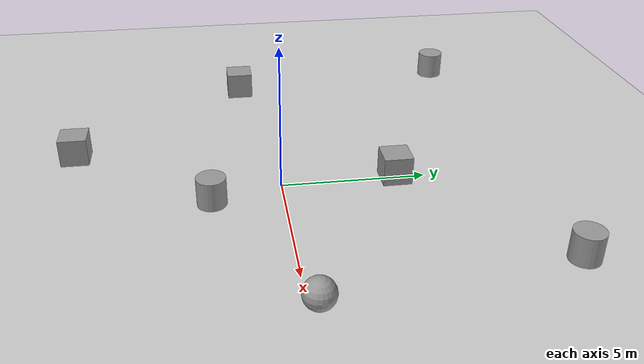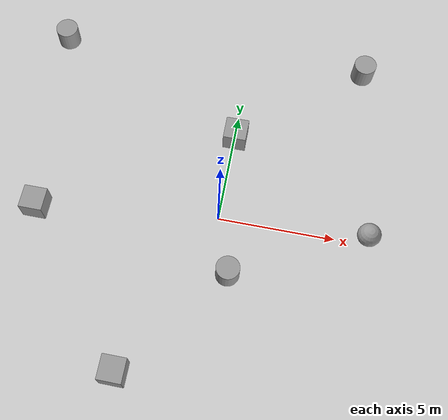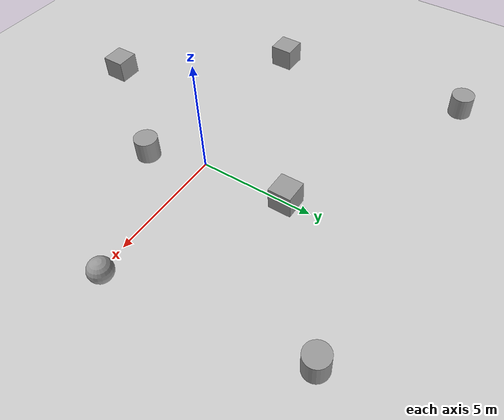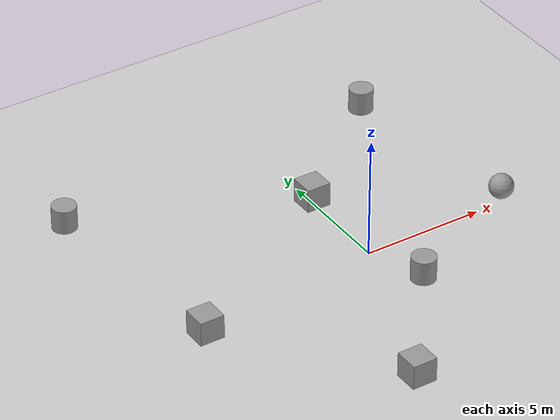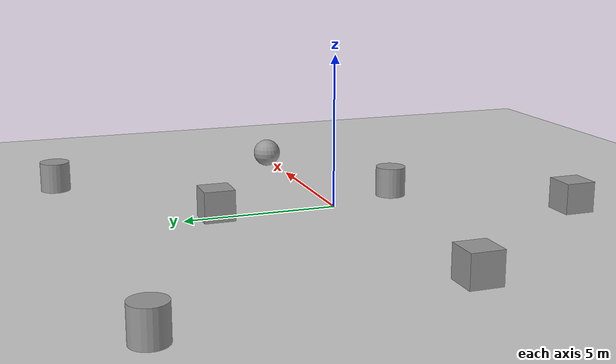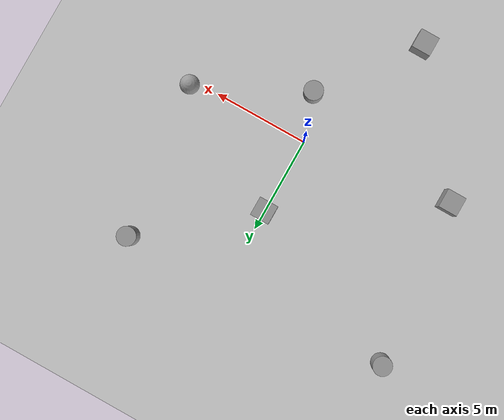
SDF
<sdf version="1.6">
 <world name="default">
  <light name="sun" type="directional">
   <pose>0 0 10 0 -0 0</pose>
   <diffuse>0.8 0.8 0.8 1</diffuse>
   <specular>0.2 0.2 0.2 1</specular>
   <attenuation>
    <range>1000</range>
    <constant>0.9</constant>
    <linear>0.01</linear>
    <quadratic>0.001</quadratic>
   </attenuation>
   <direction>-0.5 0.1 -0.9</direction>
  </light>
  <model name="ground_plane">
   <static>1</static>
   <link name="link">
    <collision name="collision">
     <geometry><plane><normal>0 0 1</normal><size>100 100</size></plane></geometry>
     <surface><friction><ode><mu>100</mu><mu2>50</mu2></ode></friction></surface>
    </collision>
    <visual name="visual">
     <cast_shadows>0</cast_shadows>
     <geometry><plane><normal>0 0 1</normal><size>100 100</size></plane></geometry>
     <material>
      <script><uri>file://media/materials/scripts/gazebo.material</uri><name>Gazebo/Grey</name></script>
     </material>
    </visual>
   </link>
  </model>
  <gravity>0 0 -9.8</gravity>
  <magnetic_field>6e-06 2.3e-05 -4.2e-05</magnetic_field>
  <atmosphere type="adiabatic"/>
  <physics name="default_physics" default="0" type="ode">
   <max_step_size>0.001</max_step_size>
   <real_time_factor>1</real_time_factor>
   <real_time_update_rate>1000</real_time_update_rate>
  </physics>
  <scene><ambient>0.4 0.4 0.4 1</ambient><background>0.7 0.7 0.7 1</background><shadows>1</shadows></scene>
  <spherical_coordinates>
   <surface_model>EARTH_WGS84</surface_model>
   <latitude_deg>0</latitude_deg>
   <longitude_deg>0</longitude_deg>
   <elevation>0</elevation>
   <heading_deg>0</heading_deg>
  </spherical_coordinates>
  <model name="world1.world">
   <link name="link_0">
    <pose>1.01026 2.53596 0 0 -0 0</pose>
    <inertial>
     <mass>1</mass>
     <inertia>
      <ixx>0.166667</ixx>
      <ixy>0</ixy>
      <ixz>0</ixz>
      <iyy>0.166667</iyy>
      <iyz>0</iyz>
      <izz>0.166667</izz>
     </inertia>
    </inertial>
    <visual name="visual">
     <geometry><box><size>1 1 1</size></box></geometry>
     <material>
      <lighting>1</lighting>
      <script><uri>file://media/materials/scripts/gazebo.material</uri><name>Gazebo/Grey</name></script>
      <shader type="pixel"/>
      <ambient>0.3 0.3 0.3 1</ambient>
      <diffuse>0.7 0.7 0.7 1</diffuse>
      <specular>0.01 0.01 0.01 1</specular>
      <emissive>0 0 0 1</emissive>
     </material>
    </visual>
    <collision name="collision">
     <geometry><box><size>1 1 1</size></box></geometry>
     <surface>
      <friction>
       <ode><mu>1</mu><mu2>1</mu2><fdir1>0 0 0</fdir1><slip1>0</slip1><slip2>0</slip2></ode>
       <torsional>
        <coefficient>1</coefficient>
        <patch_radius>0</patch_radius>
        <surface_radius>0</surface_radius>
        <use_patch_radius>1</use_patch_radius>
        <ode><slip>0</slip></ode>
       </torsional>
      </friction>
      <bounce><restitution_coefficient>0</restitution_coefficient><threshold>1e+06</threshold></bounce>
      <contact>
       <collide_without_contact>0</collide_without_contact>
       <collide_without_contact_bitmask>1</collide_without_contact_bitmask>
       <collide_bitmask>1</collide_bitmask>
       <ode>
        <soft_cfm>0</soft_cfm>
        <soft_erp>0.2</soft_erp>
        <kp>1e+13</kp>
        <kd>1</kd>
        <max_vel>0.01</max_vel>
        <min_depth>0</min_depth>
       </ode>
       <bullet>
        <split_impulse>1</split_impulse>
        <split_impulse_penetration_threshold>-0.01</split_impulse_penetration_threshold>
        <soft_cfm>0</soft_cfm>
        <soft_erp>0.2</soft_erp>
        <kp>1e+13</kp>
        <kd>1</kd>
       </bullet>
      </contact>
     </surface>
    </collision>
   </link>
   <link name="link_1">
    <pose>-6.81989 -2.34566 0 0 -0 0</pose>
    <inertial>
     <mass>1</mass>
     <inertia>
      <ixx>0.166667</ixx>
      <ixy>0</ixy>
      <ixz>0</ixz>
      <iyy>0.166667</iyy>
      <iyz>0</iyz>
      <izz>0.166667</izz>
     </inertia>
    </inertial>
    <visual name="visual">
     <geometry><box><size>1 1 1</size></box></geometry>
     <material>
      <lighting>1</lighting>
      <script><uri>file://media/materials/scripts/gazebo.material</uri><name>Gazebo/Grey</name></script>
      <shader type="pixel"/>
      <ambient>0.3 0.3 0.3 1</ambient>
      <diffuse>0.7 0.7 0.7 1</diffuse>
      <specular>0.01 0.01 0.01 1</specular>
      <emissive>0 0 0 1</emissive>
     </material>
    </visual>
    <collision name="collision">
     <geometry><box><size>1 1 1</size></box></geometry>
     <surface>
      <friction>
       <ode><mu>1</mu><mu2>1</mu2><fdir1>0 0 0</fdir1><slip1>0</slip1><slip2>0</slip2></ode>
       <torsional>
        <coefficient>1</coefficient>
        <patch_radius>0</patch_radius>
        <surface_radius>0</surface_radius>
        <use_patch_radius>1</use_patch_radius>
        <ode><slip>0</slip></ode>
       </torsional>
      </friction>
      <bounce><restitution_coefficient>0</restitution_coefficient><threshold>1e+06</threshold></bounce>
      <contact>
       <collide_without_contact>0</collide_without_contact>
       <collide_without_contact_bitmask>1</collide_without_contact_bitmask>
       <collide_bitmask>1</collide_bitmask>
       <ode>
        <soft_cfm>0</soft_cfm>
        <soft_erp>0.2</soft_erp>
        <kp>1e+13</kp>
        <kd>1</kd>
        <max_vel>0.01</max_vel>
        <min_depth>0</min_depth>
       </ode>
       <bullet>
        <split_impulse>1</split_impulse>
        <split_impulse_penetration_threshold>-0.01</split_impulse_penetration_threshold>
        <soft_cfm>0</soft_cfm>
        <soft_erp>0.2</soft_erp>
        <kp>1e+13</kp>
        <kd>1</kd>
       </bullet>
      </contact>
     </surface>
    </collision>
   </link>
   <link name="link_2">
    <pose>-7.76301 6.30091 0 0 -0 0</pose>
    <inertial>
     <mass>1</mass>
     <inertia><ixx>0.145833</ixx><ixy>0</ixy><ixz>0</ixz><iyy>0.145833</iyy><iyz>0</iyz><izz>0.125</izz></inertia>
    </inertial>
    <visual name="visual">
     <geometry><cylinder><radius>0.5</radius><length>1</length></cylinder></geometry>
     <material>
      <lighting>1</lighting>
      <script><uri>file://media/materials/scripts/gazebo.material</uri><name>Gazebo/Grey</name></script>
      <shader type="pixel"/>
      <ambient>0.3 0.3 0.3 1</ambient>
      <diffuse>0.7 0.7 0.7 1</diffuse>
      <specular>0.01 0.01 0.01 1</specular>
      <emissive>0 0 0 1</emissive>
     </material>
    </visual>
    <collision name="collision">
     <geometry><cylinder><radius>0.5</radius><length>1</length></cylinder></geometry>
     <surface>
      <friction>
       <ode><mu>1</mu><mu2>1</mu2><fdir1>0 0 0</fdir1><slip1>0</slip1><slip2>0</slip2></ode>
       <torsional>
        <coefficient>1</coefficient>
        <patch_radius>0</patch_radius>
        <surface_radius>0</surface_radius>
        <use_patch_radius>1</use_patch_radius>
        <ode><slip>0</slip></ode>
       </torsional>
      </friction>
      <bounce><restitution_coefficient>0</restitution_coefficient><threshold>1e+06</threshold></bounce>
      <contact>
       <collide_without_contact>0</collide_without_contact>
       <collide_without_contact_bitmask>1</collide_without_contact_bitmask>
       <collide_bitmask>1</collide_bitmask>
       <ode>
        <soft_cfm>0</soft_cfm>
        <soft_erp>0.2</soft_erp>
        <kp>1e+13</kp>
        <kd>1</kd>
        <max_vel>0.01</max_vel>
        <min_depth>0</min_depth>
       </ode>
       <bullet>
        <split_impulse>1</split_impulse>
        <split_impulse_penetration_threshold>-0.01</split_impulse_penetration_threshold>
        <soft_cfm>0</soft_cfm>
        <soft_erp>0.2</soft_erp>
        <kp>1e+13</kp>
        <kd>1</kd>
       </bullet>
      </contact>
     </surface>
    </collision>
   </link>
   <link name="link_3">
    <pose>1.79856 -3.78843 0 0 -0 0</pose>
    <inertial>
     <mass>1</mass>
     <inertia><ixx>0.145833</ixx><ixy>0</ixy><ixz>0</ixz><iyy>0.145833</iyy><iyz>0</iyz><izz>0.125</izz></inertia>
    </inertial>
    <visual name="visual">
     <geometry><cylinder><radius>0.5</radius><length>1</length></cylinder></geometry>
     <material>
      <lighting>1</lighting>
      <script><uri>file://media/materials/scripts/gazebo.material</uri><name>Gazebo/Grey</name></script>
      <shader type="pixel"/>
      <ambient>0.3 0.3 0.3 1</ambient>
      <diffuse>0.7 0.7 0.7 1</diffuse>
      <specular>0.01 0.01 0.01 1</specular>
      <emissive>0 0 0 1</emissive>
     </material>
    </visual>
    <collision name="collision">
     <geometry><cylinder><radius>0.5</radius><length>1</length></cylinder></geometry>
     <surface>
      <friction>
       <ode><mu>1</mu><mu2>1</mu2><fdir1>0 0 0</fdir1><slip1>0</slip1><slip2>0</slip2></ode>
       <torsional>
        <coefficient>1</coefficient>
        <patch_radius>0</patch_radius>
        <surface_radius>0</surface_radius>
        <use_patch_radius>1</use_patch_radius>
        <ode><slip>0</slip></ode>
       </torsional>
      </friction>
      <bounce><restitution_coefficient>0</restitution_coefficient><threshold>1e+06</threshold></bounce>
      <contact>
       <collide_without_contact>0</collide_without_contact>
       <collide_without_contact_bitmask>1</collide_without_contact_bitmask>
       <collide_bitmask>1</collide_bitmask>
       <ode>
        <soft_cfm>0</soft_cfm>
        <soft_erp>0.2</soft_erp>
        <kp>1e+13</kp>
        <kd>1</kd>
        <max_vel>0.01</max_vel>
        <min_depth>0</min_depth>
       </ode>
       <bullet>
        <split_impulse>1</split_impulse>
        <split_impulse_penetration_threshold>-0.01</split_impulse_penetration_threshold>
        <soft_cfm>0</soft_cfm>
        <soft_erp>0.2</soft_erp>
        <kp>1e+13</kp>
        <kd>1</kd>
       </bullet>
      </contact>
     </surface>
    </collision>
   </link>
   <link name="link_4">
    <pose>-1.82638 -8.5615 0 0 -0 0</pose>
    <inertial>
     <mass>1</mass>
     <inertia>
      <ixx>0.166667</ixx>
      <ixy>0</ixy>
      <ixz>0</ixz>
      <iyy>0.166667</iyy>
      <iyz>0</iyz>
      <izz>0.166667</izz>
     </inertia>
    </inertial>
    <visual name="visual">
     <geometry><box><size>1 1 1</size></box></geometry>
     <material>
      <lighting>1</lighting>
      <script><uri>file://media/materials/scripts/gazebo.material</uri><name>Gazebo/Grey</name></script>
      <shader type="pixel"/>
      <ambient>0.3 0.3 0.3 1</ambient>
      <diffuse>0.7 0.7 0.7 1</diffuse>
      <specular>0.01 0.01 0.01 1</specular>
      <emissive>0 0 0 1</emissive>
     </material>
    </visual>
    <collision name="collision">
     <geometry><box><size>1 1 1</size></box></geometry>
     <surface>
      <friction>
       <ode><mu>1</mu><mu2>1</mu2><fdir1>0 0 0</fdir1><slip1>0</slip1><slip2>0</slip2></ode>
       <torsional>
        <coefficient>1</coefficient>
        <patch_radius>0</patch_radius>
        <surface_radius>0</surface_radius>
        <use_patch_radius>1</use_patch_radius>
        <ode><slip>0</slip></ode>
       </torsional>
      </friction>
      <bounce><restitution_coefficient>0</restitution_coefficient><threshold>1e+06</threshold></bounce>
      <contact>
       <collide_without_contact>0</collide_without_contact>
       <collide_without_contact_bitmask>1</collide_without_contact_bitmask>
       <collide_bitmask>1</collide_bitmask>
       <ode>
        <soft_cfm>0</soft_cfm>
        <soft_erp>0.2</soft_erp>
        <kp>1e+13</kp>
        <kd>1</kd>
        <max_vel>0.01</max_vel>
        <min_depth>0</min_depth>
       </ode>
       <bullet>
        <split_impulse>1</split_impulse>
        <split_impulse_penetration_threshold>-0.01</split_impulse_penetration_threshold>
        <soft_cfm>0</soft_cfm>
        <soft_erp>0.2</soft_erp>
        <kp>1e+13</kp>
        <kd>1</kd>
       </bullet>
      </contact>
     </surface>
    </collision>
   </link>
   <link name="link_5">
    <pose>7.3366 -1.09515 0 0 -0 0</pose>
    <inertial>
     <mass>1</mass>
     <inertia><ixx>0.1</ixx><ixy>0</ixy><ixz>0</ixz><iyy>0.1</iyy><iyz>0</iyz><izz>0.1</izz></inertia>
    </inertial>
    <visual name="visual">
     <geometry><sphere><radius>0.5</radius></sphere></geometry>
     <material>
      <lighting>1</lighting>
      <script><uri>file://media/materials/scripts/gazebo.material</uri><name>Gazebo/Grey</name></script>
      <shader type="pixel"/>
      <ambient>0.3 0.3 0.3 1</ambient>
      <diffuse>0.7 0.7 0.7 1</diffuse>
      <specular>0.01 0.01 0.01 1</specular>
      <emissive>0 0 0 1</emissive>
     </material>
    </visual>
    <collision name="collision">
     <geometry><sphere><radius>0.5</radius></sphere></geometry>
     <surface>
      <friction>
       <ode><mu>1</mu><mu2>1</mu2><fdir1>0 0 0</fdir1><slip1>0</slip1><slip2>0</slip2></ode>
       <torsional>
        <coefficient>1</coefficient>
        <patch_radius>0</patch_radius>
        <surface_radius>0</surface_radius>
        <use_patch_radius>1</use_patch_radius>
        <ode><slip>0</slip></ode>
       </torsional>
      </friction>
      <bounce><restitution_coefficient>0</restitution_coefficient><threshold>1e+06</threshold></bounce>
      <contact>
       <collide_without_contact>0</collide_without_contact>
       <collide_without_contact_bitmask>1</collide_without_contact_bitmask>
       <collide_bitmask>1</collide_bitmask>
       <ode>
        <soft_cfm>0</soft_cfm>
        <soft_erp>0.2</soft_erp>
        <kp>1e+13</kp>
        <kd>1</kd>
        <max_vel>0.01</max_vel>
        <min_depth>0</min_depth>
       </ode>
       <bullet>
        <split_impulse>1</split_impulse>
        <split_impulse_penetration_threshold>-0.01</split_impulse_penetration_threshold>
        <soft_cfm>0</soft_cfm>
        <soft_erp>0.2</soft_erp>
        <kp>1e+13</kp>
        <kd>1</kd>
       </bullet>
      </contact>
     </surface>
    </collision>
   </link>
   <link name="link_6">
    <pose>6.26385 6.95389 0 0 -0 0</pose>
    <inertial>
     <mass>1</mass>
     <inertia><ixx>0.145833</ixx><ixy>0</ixy><ixz>0</ixz><iyy>0.145833</iyy><iyz>0</iyz><izz>0.125</izz></inertia>
    </inertial>
    <visual name="visual">
     <geometry><cylinder><radius>0.5</radius><length>1</length></cylinder></geometry>
     <material>
      <lighting>1</lighting>
      <script><uri>file://media/materials/scripts/gazebo.material</uri><name>Gazebo/Grey</name></script>
      <shader type="pixel"/>
      <ambient>0.3 0.3 0.3 1</ambient>
      <diffuse>0.7 0.7 0.7 1</diffuse>
      <specular>0.01 0.01 0.01 1</specular>
      <emissive>0 0 0 1</emissive>
     </material>
    </visual>
    <collision name="collision">
     <geometry><cylinder><radius>0.5</radius><length>1</length></cylinder></geometry>
     <surface>
      <friction>
       <ode><mu>1</mu><mu2>1</mu2><fdir1>0 0 0</fdir1><slip1>0</slip1><slip2>0</slip2></ode>
       <torsional>
        <coefficient>1</coefficient>
        <patch_radius>0</patch_radius>
        <surface_radius>0</surface_radius>
        <use_patch_radius>1</use_patch_radius>
        <ode><slip>0</slip></ode>
       </torsional>
      </friction>
      <bounce><restitution_coefficient>0</restitution_coefficient><threshold>1e+06</threshold></bounce>
      <contact>
       <collide_without_contact>0</collide_without_contact>
       <collide_without_contact_bitmask>1</collide_without_contact_bitmask>
       <collide_bitmask>1</collide_bitmask>
       <ode>
        <soft_cfm>0</soft_cfm>
        <soft_erp>0.2</soft_erp>
        <kp>1e+13</kp>
        <kd>1</kd>
        <max_vel>0.01</max_vel>
        <min_depth>0</min_depth>
       </ode>
       <bullet>
        <split_impulse>1</split_impulse>
        <split_impulse_penetration_threshold>-0.01</split_impulse_penetration_threshold>
        <soft_cfm>0</soft_cfm>
        <soft_erp>0.2</soft_erp>
        <kp>1e+13</kp>
        <kd>1</kd>
       </bullet>
      </contact>
     </surface>
    </collision>
   </link>
   <static>0</static>
   <pose>-0.979483 1.4157 0.5 0 -0 0</pose>
  </model>
 </world>
</sdf>
